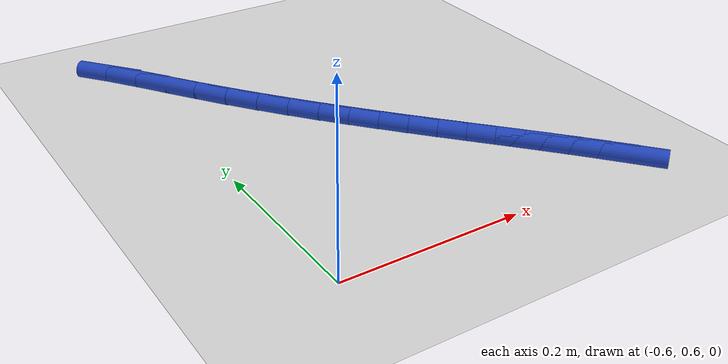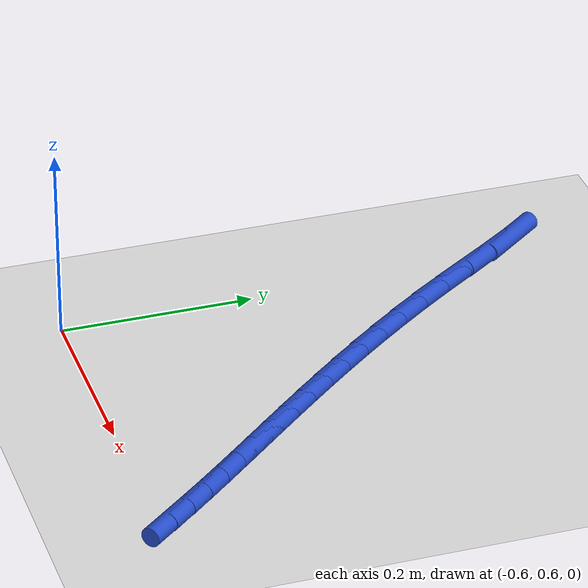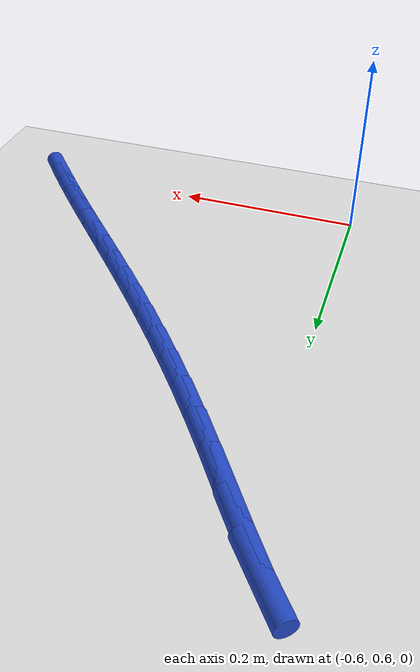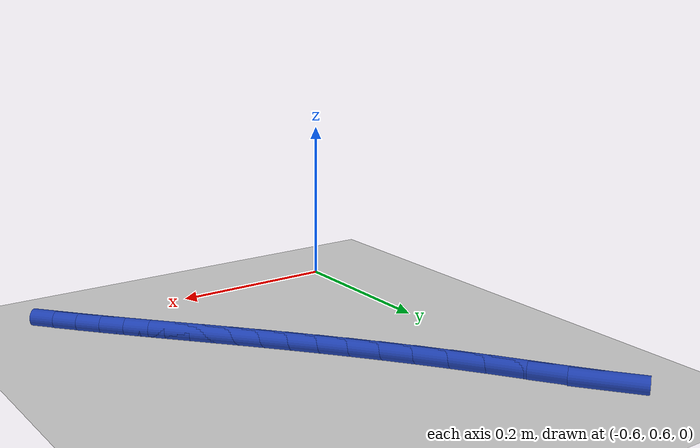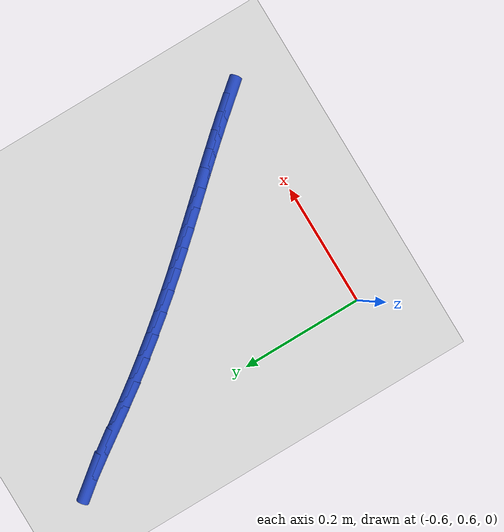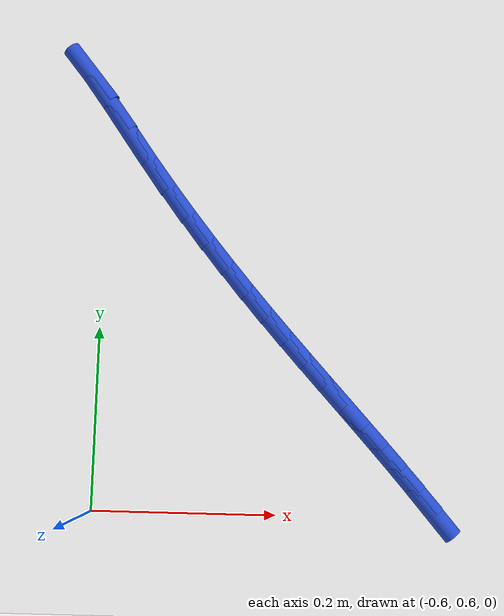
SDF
<sdf version="1.6">
 <world name="default">
  <model name="ground_plane">
   <static>1</static>
   <link name="link">
    <collision name="collision">
     <geometry><plane><normal>0 0 1</normal><size>100 100</size></plane></geometry>
     <surface><friction><ode><mu>100</mu><mu2>50</mu2></ode></friction></surface>
    </collision>
    <visual name="visual">
     <cast_shadows>0</cast_shadows>
     <geometry><plane><normal>0 0 1</normal><size>100 100</size></plane></geometry>
     <material>
      <script><uri>file://media/materials/scripts/gazebo.material</uri><name>Gazebo/WhiteGlow</name></script>
     </material>
    </visual>
   </link>
  </model>
  <model name="line">
   <link name="link_21">
    <pose>-0.2360547169538202 0.6139627923053499 0.01 0 1.57 -0.872940804313433</pose>
    <collision name="collision">
     <geometry><cylinder><radius>0.01</radius><length>0.08</length></cylinder></geometry>
    </collision>
    <visual name="visual">
     <material>
      <script><name>Gazebo/Blue</name><uri>file://media/materials/scripts/gazebo.material</uri></script>
     </material>
     <geometry><cylinder><radius>0.01</radius><length>0.08</length></cylinder></geometry>
    </visual>
   </link>
   <link name="link_22">
    <pose>-0.25500165395516655 0.6365555413772108 0.01 0 1.57 -0.8592508560091076</pose>
    <collision name="collision">
     <geometry><cylinder><radius>0.01</radius><length>0.08</length></cylinder></geometry>
    </collision>
    <visual name="visual">
     <material>
      <script><name>Gazebo/Blue</name><uri>file://media/materials/scripts/gazebo.material</uri></script>
     </material>
     <geometry><cylinder><radius>0.01</radius><length>0.08</length></cylinder></geometry>
    </visual>
   </link>
   <link name="link_23">
    <pose>-0.27422723991979653 0.6588533277101263 0.01 0 1.57 -0.8487402427142783</pose>
    <collision name="collision">
     <geometry><cylinder><radius>0.01</radius><length>0.08</length></cylinder></geometry>
    </collision>
    <visual name="visual">
     <material>
      <script><name>Gazebo/Blue</name><uri>file://media/materials/scripts/gazebo.material</uri></script>
     </material>
     <geometry><cylinder><radius>0.01</radius><length>0.08</length></cylinder></geometry>
    </visual>
   </link>
   <link name="link_24">
    <pose>-0.2937341030633579 0.6810022920933635 0.01 0 1.57 -0.8415070738261997</pose>
    <collision name="collision">
     <geometry><cylinder><radius>0.01</radius><length>0.08</length></cylinder></geometry>
    </collision>
    <visual name="visual">
     <material>
      <script><name>Gazebo/Blue</name><uri>file://media/materials/scripts/gazebo.material</uri></script>
     </material>
     <geometry><cylinder><radius>0.01</radius><length>0.08</length></cylinder></geometry>
    </visual>
   </link>
   <link name="link_25">
    <pose>-0.31352487160149817 0.7031485753161901 0.01 0 1.57 -0.8375715654040403</pose>
    <collision name="collision">
     <geometry><cylinder><radius>0.01</radius><length>0.08</length></cylinder></geometry>
    </collision>
    <visual name="visual">
     <material>
      <script><name>Gazebo/Blue</name><uri>file://media/materials/scripts/gazebo.material</uri></script>
     </material>
     <geometry><cylinder><radius>0.01</radius><length>0.08</length></cylinder></geometry>
    </visual>
   </link>
   <link name="link_26">
    <pose>-0.33360217374986545 0.7254383181678742 0.01 0 1.57 -0.8368798821241888</pose>
    <collision name="collision">
     <geometry><cylinder><radius>0.01</radius><length>0.08</length></cylinder></geometry>
    </collision>
    <visual name="visual">
     <material>
      <script><name>Gazebo/Blue</name><uri>file://media/materials/scripts/gazebo.material</uri></script>
     </material>
     <geometry><cylinder><radius>0.01</radius><length>0.08</length></cylinder></geometry>
    </visual>
   </link>
   <link name="link_27">
    <pose>-0.35396863772410725 0.7480176614376832 0.01 0 1.57 -0.8393108401909789</pose>
    <collision name="collision">
     <geometry><cylinder><radius>0.01</radius><length>0.08</length></cylinder></geometry>
    </collision>
    <visual name="visual">
     <material>
      <script><name>Gazebo/Blue</name><uri>file://media/materials/scripts/gazebo.material</uri></script>
     </material>
     <geometry><cylinder><radius>0.01</radius><length>0.08</length></cylinder></geometry>
    </visual>
   </link>
   <link name="link_28">
    <pose>-0.37462689173987146 0.7710327459148845 0.01 0 1.57 -0.8446847346907066</pose>
    <collision name="collision">
     <geometry><cylinder><radius>0.01</radius><length>0.08</length></cylinder></geometry>
    </collision>
    <visual name="visual">
     <material>
      <script><name>Gazebo/Blue</name><uri>file://media/materials/scripts/gazebo.material</uri></script>
     </material>
     <geometry><cylinder><radius>0.01</radius><length>0.08</length></cylinder></geometry>
    </visual>
   </link>
   <link name="link_29">
    <pose>-0.3955795640128057 0.794629712388746 0.01 0 1.57 -0.8527735980368186</pose>
    <collision name="collision">
     <geometry><cylinder><radius>0.01</radius><length>0.08</length></cylinder></geometry>
    </collision>
    <visual name="visual">
     <material>
      <script><name>Gazebo/Blue</name><uri>file://media/materials/scripts/gazebo.material</uri></script>
     </material>
     <geometry><cylinder><radius>0.01</radius><length>0.08</length></cylinder></geometry>
    </visual>
   </link>
   <link name="link_30">
    <pose>-0.4168292827585578 0.8189547016485353 0.01 0 1.57 -0.8633122651643738</pose>
    <collision name="collision">
     <geometry><cylinder><radius>0.01</radius><length>0.08</length></cylinder></geometry>
    </collision>
    <visual name="visual">
     <material>
      <script><name>Gazebo/Blue</name><uri>file://media/materials/scripts/gazebo.material</uri></script>
     </material>
     <geometry><cylinder><radius>0.01</radius><length>0.08</length></cylinder></geometry>
    </visual>
   </link>
   <link name="link_31">
    <pose>-0.43837867619277554 0.8441538544835198 0.01 0 1.57 -0.8760096888918707</pose>
    <collision name="collision">
     <geometry><cylinder><radius>0.01</radius><length>0.08</length></cylinder></geometry>
    </collision>
    <visual name="visual">
     <material>
      <script><name>Gazebo/Blue</name><uri>file://media/materials/scripts/gazebo.material</uri></script>
     </material>
     <geometry><cylinder><radius>0.01</radius><length>0.08</length></cylinder></geometry>
    </visual>
   </link>
   <link name="link_32">
    <pose>-0.46023037253110655 0.8703733116829672 0.01 0 1.57 -0.8905600074523075</pose>
    <collision name="collision">
     <geometry><cylinder><radius>0.01</radius><length>0.08</length></cylinder></geometry>
    </collision>
    <visual name="visual">
     <material>
      <script><name>Gazebo/Blue</name><uri>file://media/materials/scripts/gazebo.material</uri></script>
     </material>
     <geometry><cylinder><radius>0.01</radius><length>0.08</length></cylinder></geometry>
    </visual>
   </link>
   <link name="link_33">
    <pose>-0.4823869999891986 0.8977592140361452 0.01 0 1.57 -0.9066529214686809</pose>
    <collision name="collision">
     <geometry><cylinder><radius>0.01</radius><length>0.08</length></cylinder></geometry>
    </collision>
    <visual name="visual">
     <material>
      <script><name>Gazebo/Blue</name><uri>file://media/materials/scripts/gazebo.material</uri></script>
     </material>
     <geometry><cylinder><radius>0.01</radius><length>0.08</length></cylinder></geometry>
    </visual>
   </link>
   <link name="link_34">
    <pose>-0.5048511867826995 0.9264577023323213 0.01 0 1.57 -0.923983000824628</pose>
    <collision name="collision">
     <geometry><cylinder><radius>0.01</radius><length>0.08</length></cylinder></geometry>
    </collision>
    <visual name="visual">
     <material>
      <script><name>Gazebo/Blue</name><uri>file://media/materials/scripts/gazebo.material</uri></script>
     </material>
     <geometry><cylinder><radius>0.01</radius><length>0.08</length></cylinder></geometry>
    </visual>
   </link>
   <link name="link_35">
    <pose>-0.527625561127257 0.9566149173607632 0.01 0 1.57 -0.9422576217575208</pose>
    <collision name="collision">
     <geometry><cylinder><radius>0.01</radius><length>0.08</length></cylinder></geometry>
    </collision>
    <visual name="visual">
     <material>
      <script><name>Gazebo/Blue</name><uri>file://media/materials/scripts/gazebo.material</uri></script>
     </material>
     <geometry><cylinder><radius>0.01</radius><length>0.08</length></cylinder></geometry>
    </visual>
   </link>
   <link name="link_36">
    <pose>-0.5507127512385188 0.9883769999107385 0.01 0 1.57 -0.9607844410860231</pose>
    <collision name="collision">
     <geometry><cylinder><radius>0.01</radius><length>0.08</length></cylinder></geometry>
    </collision>
    <visual name="visual">
     <material>
      <script><name>Gazebo/Blue</name><uri>file://media/materials/scripts/gazebo.material</uri></script>
     </material>
     <geometry><cylinder><radius>0.01</radius><length>0.08</length></cylinder></geometry>
    </visual>
   </link>
   <link name="link_37">
    <pose>-0.5741128465188915 1.0218565698964357 0.01 0 1.57 -0.9676771164594076</pose>
    <collision name="collision">
     <geometry><cylinder><radius>0.01</radius><length>0.08</length></cylinder></geometry>
    </collision>
    <visual name="visual">
     <material>
      <script><name>Gazebo/Blue</name><uri>file://media/materials/scripts/gazebo.material</uri></script>
     </material>
     <geometry><cylinder><radius>0.01</radius><length>0.08</length></cylinder></geometry>
    </visual>
   </link>
   <link name="link_38">
    <pose>-0.5977511115798656 1.0561783082893161 0.01 0 1.57 -0.9499707633925182</pose>
    <collision name="collision">
     <geometry><cylinder><radius>0.01</radius><length>0.08</length></cylinder></geometry>
    </collision>
    <visual name="visual">
     <material>
      <script><name>Gazebo/Blue</name><uri>file://media/materials/scripts/gazebo.material</uri></script>
     </material>
     <geometry><cylinder><radius>0.01</radius><length>0.08</length></cylinder></geometry>
    </visual>
   </link>
   <link name="link_39">
    <pose>-0.6214675288253579 1.089340884040597 0.01 0 1.57 -0.9026625188892047</pose>
    <collision name="collision">
     <geometry><cylinder><radius>0.01</radius><length>0.08</length></cylinder></geometry>
    </collision>
    <visual name="visual">
     <material>
      <script><name>Gazebo/Blue</name><uri>file://media/materials/scripts/gazebo.material</uri></script>
     </material>
     <geometry><cylinder><radius>0.01</radius><length>0.08</length></cylinder></geometry>
    </visual>
   </link>
  </model>
 </world>
</sdf>
